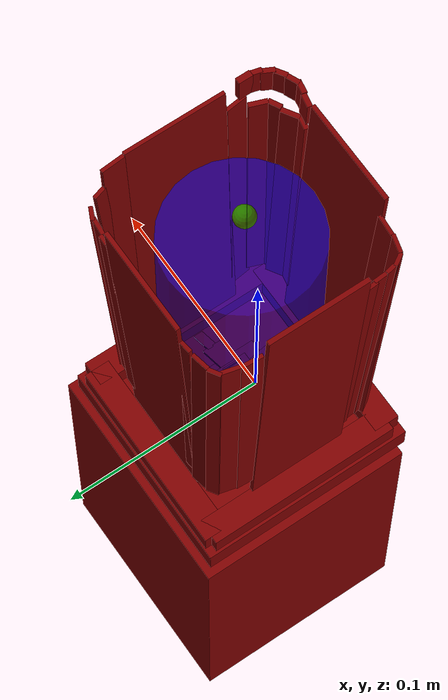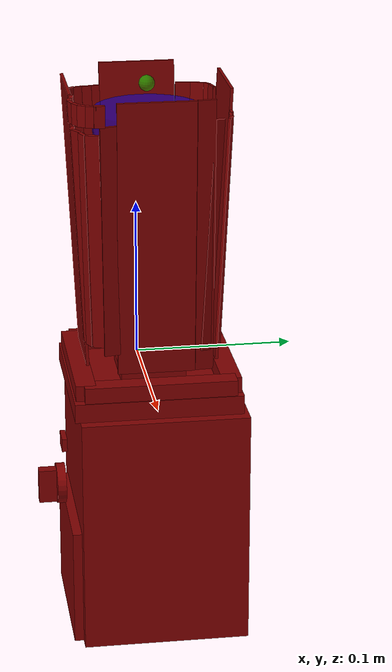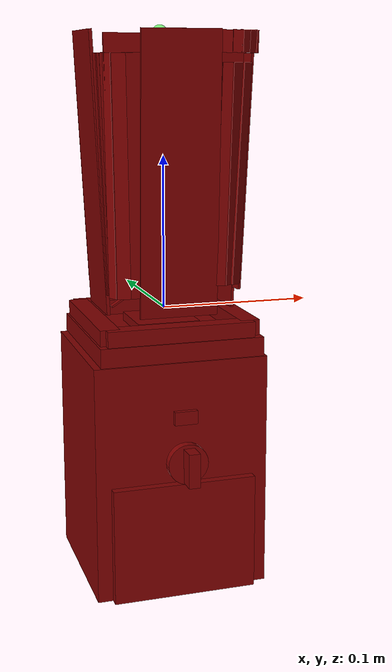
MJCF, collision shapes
<?xml version='1.0' encoding='UTF-8'?>
<mujoco model="model">
  <option timestep="0.002" gravity="0.0 0.0 -9.81"/>
  <compiler angle="radian"/>
  <asset>
    <mesh file="visuals/blade.obj" name="blade_vis"/>
    <mesh file="visuals/Body001.obj" name="Body001_vis"/>
    <mesh file="visuals/knob_speed.obj" name="knob_speed_vis"/>
    <mesh file="visuals/pitcher.obj" name="pitcher_vis"/>
    <mesh file="visuals/pitcher_main.obj" name="pitcher_main_vis"/>
    <mesh file="visuals/power_button.obj" name="power_button_vis"/>
    <texture file="visuals/T_BC001.png" name="Body001_material" type="2d"/>
    <material name="Body001_material" rgba="1 1 1 1.0" texture="Body001_material" shininess="0.2512328028678894" specular="0.3103448502657381"/>
    <texture file="visuals/T_BC001.png" name="knob_speed_material" type="2d"/>
    <material name="knob_speed_material" rgba="1 1 1 1.0" texture="knob_speed_material" shininess="0.2512328028678894" specular="0.3103448502657381"/>
    <texture file="visuals/T_BC001.png" name="pitcher_material" type="2d"/>
    <material name="pitcher_material" rgba="1 1 1 1.0" texture="pitcher_material" shininess="0.2512328028678894" specular="0.3103448502657381"/>
    <texture file="visuals/T_BC001.png" name="blade_material" type="2d"/>
    <material name="blade_material" rgba="1 1 1 1.0" texture="blade_material" shininess="0.2512328028678894" specular="0.3103448502657381"/>
    <material name="pitcher_main_material" rgba="0.24127569794654846 0.24127569794654846 0.24127569794654846 0.800000011920929" shininess="0.2512328028678894" specular="0.3103448502657381"/>
    <texture file="visuals/T_BC001.png" name="power_button_material" type="2d"/>
    <material name="power_button_material" rgba="1 1 1 1.0" texture="power_button_material" shininess="0.2512328028678894" specular="0.3103448502657381"/>
  </asset>
  <default>
    <default class="visual">
      <geom conaffinity="0" contype="0" group="1" type="mesh"/>
    </default>
    <default class="collision">
      <geom group="0" rgba="0.5 0 0 0.5" density="1.0" solref="0.004 1" solimp="0.998 0.998 0.001"/>
    </default>
    <default class="spawn">
      <geom group="0" rgba="1 1 1 0.5" contype="0" conaffinity="0"/>
      <site group="0" rgba="1 1 1 0.5"/>
    </default>
    <default class="region">
      <geom group="1" conaffinity="0" contype="0" rgba="0 1 0 0" mass="0"/>
    </default>
  </default>
  <worldbody>
    <body>
      <body name="object">
        <geom mesh="Body001_vis" type="mesh" solimp="0.998 0.998 0.001" solref="0.001 1" friction="0.95 0.3 0.1" class="visual" material="Body001_material"/>
        <geom type="box" pos="-0.00008311 0.01147959 -0.10564083" size="0.05748409032821655 0.05378222092986107 0.0782916247844696" quat="1.0 0.0 0.0 0.0" class="collision"/>
        <geom type="box" pos="-0.00000003 0.00524253 -0.14537154" size="0.04769057780504227 0.053517669439315796 0.0385608971118927" quat="1.0 0.0 0.0 0.0" class="collision"/>
        <body name="power_button">
          <joint axis="0.0 1.0 0.0" pos="-0.00000011 -0.04843722 -0.06156465" limited="true" name="power_button_joint" range="0.0 0.003" type="slide" damping="1" frictionloss="1" armature=".01" stiffness="0.5" springref="-0.5"/>
          <geom mesh="power_button_vis" type="mesh" solimp="0.998 0.998 0.001" solref="0.001 1" friction="0.95 0.3 0.1" class="visual" material="power_button_material"/>
          <geom class="collision" type="box" pos="-0.00000012 -0.04881312 -0.06156476" size="0.007550617679953575 0.0017081890255212784 0.004386723041534424" quat="1.0 0.0 0.0 0.0" name="power_button_main"/>
        </body>
        <body name="pitcher">
          <geom mesh="pitcher_vis" type="mesh" solimp="0.998 0.998 0.001" solref="0.001 1" friction="0.95 0.3 0.1" class="visual" material="pitcher_material"/>
          <geom type="box" pos="-0.04609489 0.00911048 -0.00983476" size="0.006394772324711084 0.04842328280210495 0.006411881186068058" quat="1.0 0.0 0.0 0.0" class="collision"/>
          <geom type="box" pos="0.04653638 0.00911048 -0.00983476" size="0.006394772324711084 0.04842328280210495 0.006411881186068058" quat="1.0 0.0 0.0 0.0" class="collision"/>
          <geom type="box" pos="-0.00043082 0.05444177 -0.00983476" size="0.04842328280210495 0.006394779775291681 0.006411881186068058" quat="1.0 0.0 0.0 0.0" class="collision"/>
          <geom type="box" pos="-0.00043082 -0.03827661 -0.00983476" size="0.04842328280210495 0.006394779775291681 0.006411881186068058" quat="1.0 0.0 0.0 0.0" class="collision"/>
          <geom type="box" pos="-0.00000000 0.00826755 -0.01121204" size="0.020905563607811928 0.020905563607811928 0.0034535357262939215" quat="1.0 0.0 0.0 0.0" class="collision"/>
          <geom type="box" pos="-0.00000000 0.00826755 -0.00010412" size="0.009490281343460083 0.009490281343460083 0.003182109212502837" quat="1.0 0.0 0.0 0.0" class="collision"/>
          <geom type="box" pos="-0.00008311 0.00792829 -0.01976543" size="0.053785525262355804 0.053782425820827484 0.006159136537462473" quat="1.0 0.0 0.0 0.0" class="collision"/>
          <body name="blade">
            <geom mesh="blade_vis" type="mesh" solimp="0.998 0.998 0.001" solref="0.001 1" friction="0.95 0.3 0.1" class="visual" material="blade_material"/>
            <geom type="box" pos="0.00075530 0.00803136 0.01775066" size="0.007751177065074444 0.007751177065074444 0.000493193103466183" quat="1.0 0.0 0.0 0.0" class="collision"/>
            <geom type="box" pos="-0.00006391 0.02200975 0.02075417" size="0.004649334121495485 0.006977303884923458 0.0005624762270599604" quat="0.9774072766304016 0.21136470139026642 0.0 0.0" class="collision"/>
            <geom type="box" pos="-0.00006391 0.03361954 0.02602175" size="0.0023086860310286283 0.006977303884923458 0.0005624761688522995" quat="0.9774072766304016 0.21136470139026642 0.0 0.0" class="collision"/>
            <geom type="box" pos="-0.01479433 0.00816089 0.01296738" size="0.004649334121495485 0.009789085015654564 0.0005624762852676213" quat="0.6795143485069275 -0.19560261070728302 -0.19560261070728302 0.6795141696929932" class="collision"/>
            <geom type="box" pos="-0.02797359 0.00816089 0.00469440" size="0.0023086860310286283 0.006977303884923458 0.0005624761106446385" quat="0.6795143485069275 -0.19560259580612183 -0.1956026256084442 0.6795141696929932" class="collision"/>
            <geom type="box" pos="-0.00003605 -0.00649828 0.02093816" size="0.004649334121495485 0.006977303884923458 0.0005624762270599604" quat="7.37921936888597e-08 1.5957596133375773e-08 0.21136470139026642 0.9774072766304016" class="collision"/>
            <geom type="box" pos="-0.00003605 -0.01810807 0.02620574" size="0.0023086860310286283 0.006977303884923458 0.0005624761688522995" quat="7.37921936888597e-08 1.5957596133375773e-08 0.2113647162914276 0.9774072766304016" class="collision"/>
            <geom type="box" pos="0.01469438 0.00820850 0.01315137" size="0.004649334121495485 0.009789085015654564 0.0005624762852676213" quat="0.6795143485069275 -0.1956026405096054 0.19560255110263824 -0.6795141696929932" class="collision"/>
            <geom type="box" pos="0.02787363 0.00820849 0.00487839" size="0.0023086860310286283 0.006977303884923458 0.0005624761106446385" quat="0.6795143485069275 -0.19560261070728302 0.19560261070728302 -0.6795141696929932" class="collision"/>
            <geom type="cylinder" pos="0.00006782 0.00798056 0.01237917" size="0.006157022900879383 0.005274960771203041" quat="1.0 0.0 0.0 0.0" class="collision"/>
          </body>
          <body name="pitcher_main">
            <geom class="region" type="cylinder" size="0.035252515226602554 0.06503906846046448" pos="0.00049619 0.00841177 0.09565107" rgba="0 0 1 0.5" name="reg_int"/>
            <geom mesh="pitcher_main_vis" type="mesh" solimp="0.998 0.998 0.001" solref="0.001 1" friction="0.95 0.3 0.1" class="visual" material="pitcher_main_material"/>
            <geom class="collision" size="0.0389 0.0376 0.0006" pos="-0.0021 -0.0004 -0.0172" type="box" />
            <geom class="collision" size="0.0253 0.0010 0.0887" pos="-0.0003 -0.0388 0.0897" quat="0.9997 0.0240 0 0" type="box" />
            <geom class="collision" size="0.0242 0.0011 0.0887" pos="-0.0459 0.0071 0.0897" quat="0.7069 0.0170 -0.0170 -0.7069" type="box" />
            <geom class="collision" size="0.0253 0.0010 0.0887" pos="-0.0003 0.0523 0.0897" quat="0.0000 0.0000 -0.0240 -0.9997" type="box" />
            <geom class="collision" size="0.0244 0.0009 0.0887" pos="0.0458 0.0071 0.0897" quat="0.7069 0.0170 0.0170 0.7069" type="box" />
            <geom class="collision" size="0.0057 0.0009 0.0887" pos="0.0446 0.0375 0.0897" quat="0.6785 0.0176 0.0163 0.7342" type="box" />
            <geom class="collision" size="0.0031 0.0009 0.0757" pos="0.0442 0.042 0.09" quat="0.5984 -0.0014 0.0298 0.8007" type="box" />
            <geom class="collision" size="0.0031 0.0009 0.0749" pos="0.04 0.0499 0.09" quat="0.2285 0.0020 0.0241 0.9732" type="box" />
            <geom class="collision" size="0.0031 0.0009 0.0749" pos="0.0268 0.0524 0.0901" quat="0.0167 0.0071 0.0231 0.9996" type="box" />
            <geom class="collision" size="0.0043 0.0009 0.0749" pos="0.0338 0.0508 0.09" quat="0.0502 0.0063 0.0233 0.9984" type="box" />
            <geom class="collision" size="0.0031 0.0009 0.0757" pos="-0.0248 0.0521 0.0896" quat="0.0673 0.0204 -0.0217 -0.9973" type="box" />
            <geom class="collision" size="0.0031 0.0009 0.0749" pos="-0.04 0.0501 0.0892" quat="0.2816 0.0176 -0.0165 -0.9592" type="box" />
            <geom class="collision" size="0.0043 0.0009 0.0749" pos="-0.0429 0.0442 0.0892" quat="0.6121 0.0104 -0.0218 -0.7904" type="box" />
            <geom class="collision" size="0.0042 0.0009 0.0749" pos="-0.0333 0.0522 0.0895" quat="0.1021 0.0203 -0.0130 -0.9945" type="box" />
            <geom class="collision" size="0.0052 0.0009 0.0749" pos="-0.0446 0.0355 0.0893" quat="0.6816 0.0084 -0.0226 -0.7313" type="box" />
            <geom class="collision" size="0.0031 0.0009 0.0749" pos="-0.0428 -0.0328 0.0892" quat="0.8758 0.0241 0.0007 -0.4821" type="box" />
            <geom class="collision" size="0.0043 0.0009 0.0749" pos="-0.0369 -0.0364 0.0892" quat="0.9913 0.0227 -0.0081 -0.1294" type="box" />
            <geom class="collision" size="0.0052 0.0009 0.0749" pos="-0.0282 -0.0375 0.0893" quat="0.9990 0.0219 -0.0102 -0.0384" type="box" />
            <geom class="collision" size="0.0031 0.0009 0.0749" pos="-0.0434 -0.0293 0.0892" quat="0.7740 0.0239 -0.0037 -0.6328" type="box" />
            <geom class="collision" size="0.0031 0.0009 0.0749" pos="-0.044 -0.0234 0.0892" quat="0.7331 0.0236 -0.0051 -0.6797" type="box" />
            <geom class="collision" size="0.0031 0.0009 0.0749" pos="-0.0451 -0.0182 0.0892" quat="0.7331 0.0236 -0.0051 -0.6797" type="box" />
            <geom class="collision" size="0.0032 0.0012 0.0694" pos="0.0402 -0.0356 0.0892" quat="0.9723 0.0174 0.0168 0.2324" type="box" />
            <geom class="collision" size="0.0043 0.0012 0.0694" pos="0.0443 -0.0301 0.0892" quat="0.8205 0.0223 0.0093 0.5711" type="box" />
            <geom class="collision" size="0.0052 0.0009 0.0749" pos="0.0463 -0.0216 0.0893" quat="0.6607 0.0217 0.0105 0.7503" type="box" />
            <geom class="collision" size="0.0032 0.0012 0.0694" pos="0.028 -0.0389 0.0892" quat="0.9953 0.0219 0.0102 -0.0943" type="box" />
            <geom class="collision" size="0.0043 0.0012 0.0694" pos="0.0346 -0.037 0.0892" quat="0.9611 0.0241 0.0016 0.2753" type="box" />
            <geom class="collision" size="0.0032 0.0012 0.0067" pos="0.0285 -0.0423 0.171" quat="0.9953 0.0219 0.0102 -0.0943" type="box" />
            <geom class="collision" size="0.0032 0.0012 0.0067" pos="0.0348 -0.0441 0.171" quat="0.9953 0.0219 0.0102 -0.0943" type="box" />
            <geom class="collision" size="0.0032 0.0012 0.0067" pos="0.0395 -0.0434 0.171" quat="0.9808 0.0180 0.0161 0.1937" type="box" />
            <geom class="collision" size="0.0032 0.0012 0.0067" pos="0.0448 -0.041 0.171" quat="0.9604 0.0166 0.0175 0.2774" type="box" />
            <geom class="collision" size="0.0032 0.0012 0.0067" pos="0.0484 -0.0375 0.171" quat="0.8557 0.0115 0.0212 0.5170" type="box" />
            <geom class="collision" size="0.0032 0.0012 0.0067" pos="0.0508 -0.0328 0.171" quat="0.7959 0.0091 0.0223 0.6049" type="box" />
            <geom class="collision" size="0.0015 0.0034 0.0068" pos="0.0515 -0.0279 0.171" type="box" />
          </body>
        </body>
        <body name="knob_speed">
          <joint axis="0.0 1.0 0.0" pos="0.00016407 -0.05350824 -0.09123564" limited="true" name="knob_speed_joint" range="0.0 3.961897402027128" type="hinge" damping="0.05" frictionloss="0.1" armature="0.001"/>
          <geom mesh="knob_speed_vis" type="mesh" solimp="0.998 0.998 0.001" solref="0.001 1" friction="0.95 0.3 0.1" class="visual" material="knob_speed_material"/>
          <geom type="cylinder" pos="0.00017565 -0.05136684 -0.09128979" size="0.01323349867016077 0.002916333032771945" quat="0.7071067094802856 0.70710688829422 0.0 0.0" class="collision" density="0.001"/>
          <geom class="collision" type="box" pos="0.00058524 -0.05913544 -0.09185055" size="0.003690816694870591 0.006763337645679712 0.011243381537497044" quat="1.0 0.0 0.0 0.0" name="knob_speed_main" density="0.001"/>
        </body>
        <geom class="region" name="reg_main" type="box" pos="0.0 0.008090964999999999 -5.5000000000055005e-06" size="0.04 0.04 0.18495181"/>
      </body>
      <site rgba="0 1 0 0.5" size="0.005" pos="0.00034126 0.00730078 0.177" name="anchor_site"/>
    </body>
  </worldbody>
  <actuator>
    <motor name="knob_speed_joint_actuator" joint="knob_speed_joint" gear="10"/>
    <motor name="power_button_joint_actuator" joint="power_button_joint" gear="0.5"/>
  </actuator>
</mujoco>
